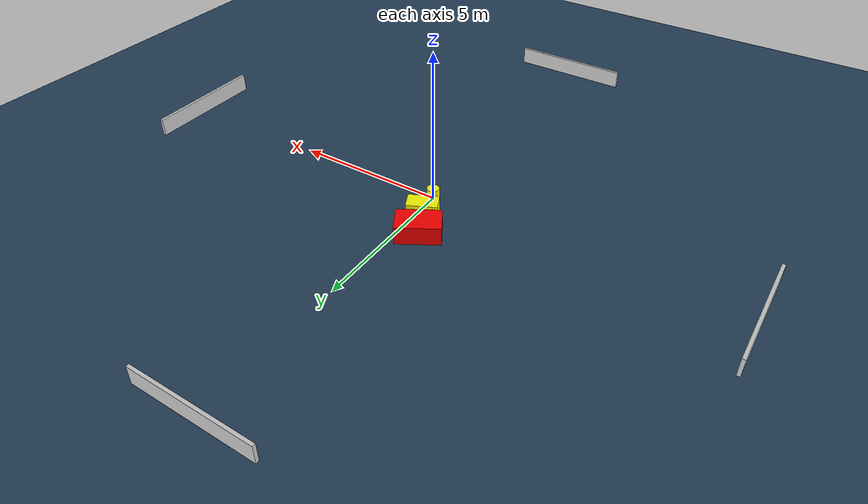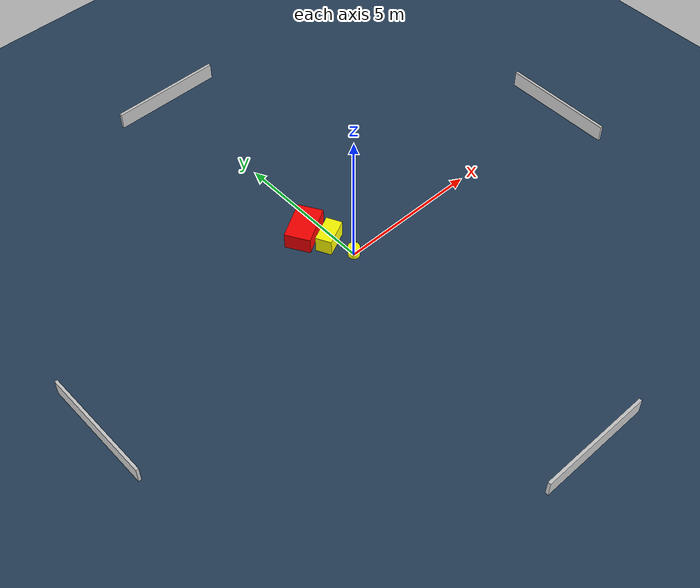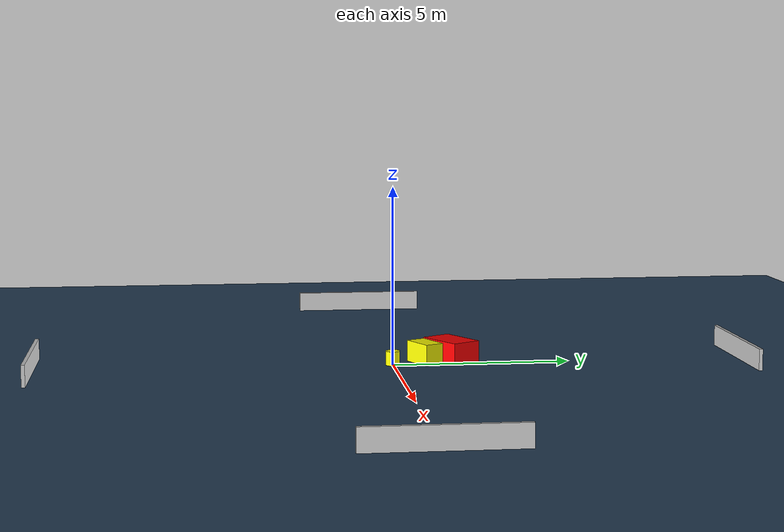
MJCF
<?xml version="1.0" ?>
<mujoco model="generated_environment">
  <option timestep="0.01" integrator="RK4" cone="elliptic"/>
  <default>
    <geom density="1"/>
  </default>
  <asset>
    <texture builtin="gradient" height="3072" name="skybox" rgb1="0.3 0.5 0.7" rgb2="0 0 0" type="skybox" width="512"/>
    <texture builtin="checker" height="300" name="groundplane" rgb1="0.2 0.3 0.4" rgb2="0.1 0.2 0.3" type="2d" width="300"/>
    <material name="groundplane" reflectance="0.2" texrepeat="5 5" texture="groundplane"/>
  </asset>
  <worldbody>
    <light dir="0 0 -1" directional="true" pos="0 0 1.5"/>
    <geom condim="3" friction="0.5 0.005 0.001" material="groundplane" name="floor" pos="0 0 0" size="0 0 0.05" type="plane"/>
    <body name="walls">
      <geom name="wall_1" condim="4" pos="-10.0 0.0 0.3" rgba="0.800000011920929 0.800000011920929 0.800000011920929 1.0" size="0.05 2.0 0.3" type="box"/>
      <geom name="wall_2" condim="4" pos="10.0 0.0 0.3" rgba="0.800000011920929 0.800000011920929 0.800000011920929 1.0" size="0.05 2.0 0.3" type="box"/>
      <geom name="wall_3" condim="4" pos="0.0 -10.0 0.3" rgba="0.800000011920929 0.800000011920929 0.800000011920929 1.0" size="2.0 0.05 0.3" type="box"/>
      <geom name="wall_4" condim="4" pos="0.0 10.0 0.3" rgba="0.800000011920929 0.800000011920929 0.800000011920929 1.0" size="2.0 0.05 0.3" type="box"/>
    </body>
    <body name="robot">
      <joint name="joint_x" type="slide" pos="0 0 0" axis="1 0 0"/>
      <joint name="joint_y" type="slide" pos="0 0 0" axis="0 1 0"/>
      <geom name="robot" type="cylinder" pos="0.0 0.0 0.2" size="0.2 0.2 0.0" mass="5.0" friction="1.0 0.005 0.0001" condim="4" rgba="1.0 1.0 0.0 1.0"/>
    </body>
    <body name="obstacle_1_movable">
      <geom name="obstacle_1_movable" condim="4" pos="-0.23436375247929167 0.9456401799609536 0.3" euler="0 0 26.080822565646187" friction="0.0 0.005 0.001" rgba="1.0 1.0 0.0 1.0" size="0.48198923890174733 0.27998744938621795 0.3" type="box" mass="0.1"/>
      <joint type="free"/>
    </body>
    <body name="obstacle_2_static">
      <geom name="obstacle_2_static" condim="4" pos="-0.6105632675567406 1.745331023552758 0.3" euler="0 0 120.5637119808563" friction="0.0 0.005 0.001" rgba="1.0 0.0 0.0 1.0" size="0.44564348575502144 0.6978547496554393 0.3" type="box"/>
    </body>
  </worldbody>
  <actuator>
    <motor name="actuator_x" joint="joint_x" gear="1" ctrlrange="-1 1"/>
    <motor name="actuator_y" joint="joint_y" gear="1" ctrlrange="-1 1"/>
  </actuator>
</mujoco>
